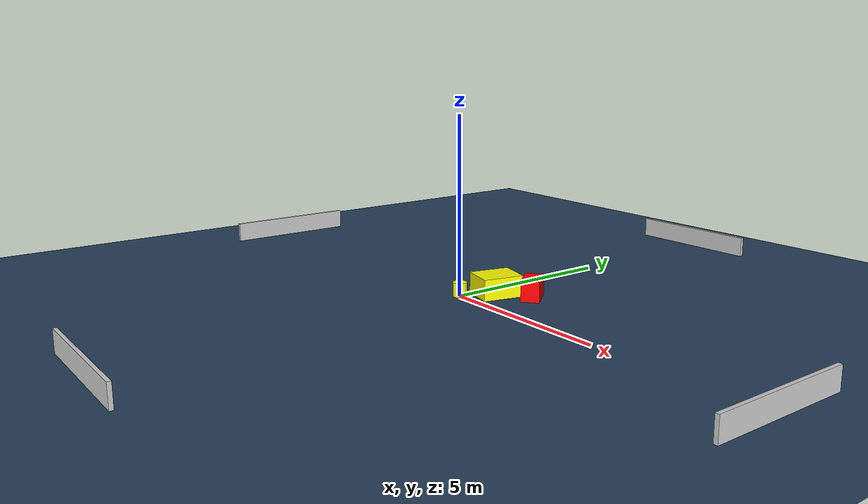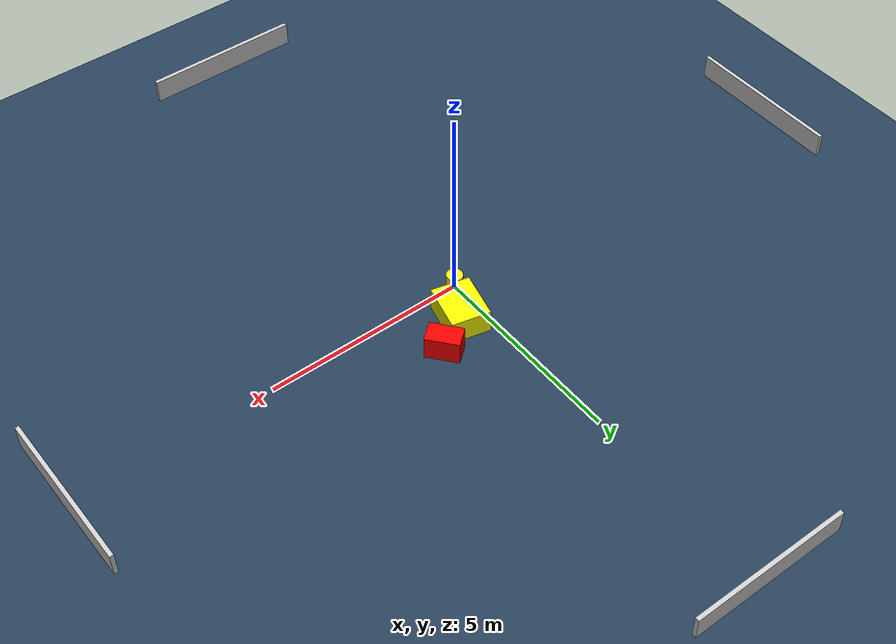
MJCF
<?xml version="1.0" ?>
<mujoco model="generated_environment">
  <option timestep="0.01" integrator="RK4" cone="elliptic"/>
  <default>
    <geom density="1"/>
  </default>
  <asset>
    <texture builtin="gradient" height="3072" name="skybox" rgb1="0.3 0.5 0.7" rgb2="0 0 0" type="skybox" width="512"/>
    <texture builtin="checker" height="300" name="groundplane" rgb1="0.2 0.3 0.4" rgb2="0.1 0.2 0.3" type="2d" width="300"/>
    <material name="groundplane" reflectance="0.2" texrepeat="5 5" texture="groundplane"/>
  </asset>
  <worldbody>
    <light dir="0 0 -1" directional="true" pos="0 0 1.5"/>
    <geom condim="3" friction="0.5 0.005 0.001" material="groundplane" name="floor" pos="0 0 0" size="0 0 0.05" type="plane"/>
    <body name="walls">
      <geom name="wall_1" condim="4" pos="-10.0 0.0 0.3" rgba="0.800000011920929 0.800000011920929 0.800000011920929 1.0" size="0.05 2.0 0.3" type="box"/>
      <geom name="wall_2" condim="4" pos="10.0 0.0 0.3" rgba="0.800000011920929 0.800000011920929 0.800000011920929 1.0" size="0.05 2.0 0.3" type="box"/>
      <geom name="wall_3" condim="4" pos="0.0 -10.0 0.3" rgba="0.800000011920929 0.800000011920929 0.800000011920929 1.0" size="2.0 0.05 0.3" type="box"/>
      <geom name="wall_4" condim="4" pos="0.0 10.0 0.3" rgba="0.800000011920929 0.800000011920929 0.800000011920929 1.0" size="2.0 0.05 0.3" type="box"/>
    </body>
    <body name="robot">
      <joint name="joint_x" type="slide" pos="0 0 0" axis="1 0 0"/>
      <joint name="joint_y" type="slide" pos="0 0 0" axis="0 1 0"/>
      <geom name="robot" type="cylinder" pos="0.0 0.0 0.2" size="0.2 0.2 0.0" mass="5.0" friction="1.0 0.005 0.0001" condim="4" rgba="1.0 1.0 0.0 1.0"/>
    </body>
    <body name="obstacle_1_movable">
      <geom name="obstacle_1_movable" condim="4" pos="0.5098109539188852 0.8747461759448464 0.3" euler="0 0 256.56976475701384" friction="0.0 0.005 0.001" rgba="1.0 1.0 0.0 1.0" size="0.5861530606138179 0.4782389892004846 0.3" type="box" mass="0.1"/>
      <joint type="free"/>
    </body>
    <body name="obstacle_2_static">
      <geom name="obstacle_2_static" condim="4" pos="1.389654762746636 1.4234515767113256 0.3" euler="0 0 219.24655674055933" friction="0.0 0.005 0.001" rgba="1.0 0.0 0.0 1.0" size="0.25748926674438605 0.40907112973517645 0.3" type="box"/>
    </body>
  </worldbody>
  <actuator>
    <motor name="actuator_x" joint="joint_x" gear="1" ctrlrange="-1 1"/>
    <motor name="actuator_y" joint="joint_y" gear="1" ctrlrange="-1 1"/>
  </actuator>
</mujoco>
